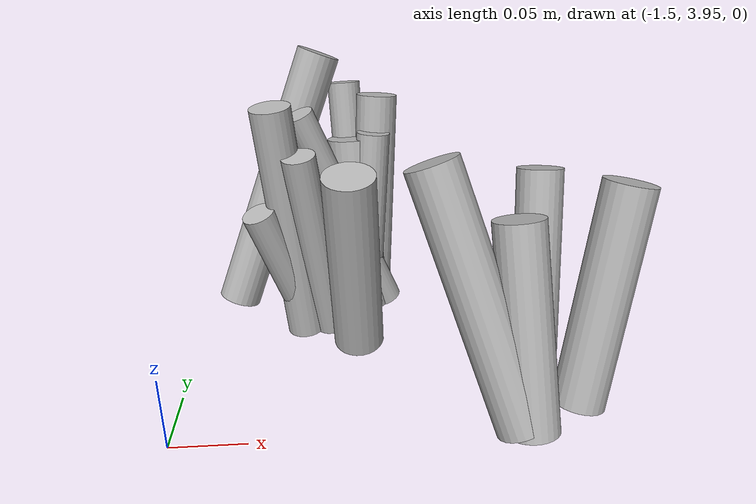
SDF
<sdf version="1.6">
 <world name="default">
  <model name="tussocks">
   <static>true</static>
   <link name="tuft48_0">
    <pose>-1.3808 4.1161 0.0602 0 0.2820 4.0723</pose>
    <visual name="tuft48_0_v">
     <geometry><cylinder><radius>0.0126</radius><length>0.1308</length></cylinder></geometry>
     <material>
      <script>
       <uri>model://bushfire/materials/scripts</uri>
       <uri>model://bushfire/materials/textures</uri>
       <name>Bushfire/Foliage2</name>
      </script>
     </material>
    </visual>
   </link>
   <link name="tuft48_1">
    <pose>-1.3813 4.0583 0.0687 0 0.1963 4.5888</pose>
    <visual name="tuft48_1_v">
     <geometry><cylinder><radius>0.0190</radius><length>0.1494</length></cylinder></geometry>
     <material>
      <script>
       <uri>model://bushfire/materials/scripts</uri>
       <uri>model://bushfire/materials/textures</uri>
       <name>Bushfire/Tussock</name>
      </script>
     </material>
    </visual>
   </link>
   <link name="tuft48_2">
    <pose>-1.3647 4.1488 0.0804 0 0.1511 1.2194</pose>
    <visual name="tuft48_2_v">
     <geometry><cylinder><radius>0.0160</radius><length>0.1748</length></cylinder></geometry>
     <material>
      <script>
       <uri>model://bushfire/materials/scripts</uri>
       <uri>model://bushfire/materials/textures</uri>
       <name>Bushfire/Tussock</name>
      </script>
     </material>
    </visual>
   </link>
   <link name="tuft48_3">
    <pose>-1.3878 4.1229 0.0820 0 0.3839 3.3956</pose>
    <visual name="tuft48_3_v">
     <geometry><cylinder><radius>0.0117</radius><length>0.1783</length></cylinder></geometry>
     <material>
      <script>
       <uri>model://bushfire/materials/scripts</uri>
       <uri>model://bushfire/materials/textures</uri>
       <name>Bushfire/Tussock</name>
      </script>
     </material>
    </visual>
   </link>
   <link name="tuft48_4">
    <pose>-1.4215 4.1810 0.0585 0 0.1193 2.3030</pose>
    <visual name="tuft48_4_v">
     <geometry><cylinder><radius>0.0129</radius><length>0.1271</length></cylinder></geometry>
     <material>
      <script>
       <uri>model://bushfire/materials/scripts</uri>
       <uri>model://bushfire/materials/textures</uri>
       <name>Bushfire/Foliage2</name>
      </script>
     </material>
    </visual>
   </link>
   <link name="tuft48_5">
    <pose>-1.4099 4.0872 0.0701 0 0.1707 3.9599</pose>
    <visual name="tuft48_5_v">
     <geometry><cylinder><radius>0.0126</radius><length>0.1523</length></cylinder></geometry>
     <material>
      <script>
       <uri>model://bushfire/materials/scripts</uri>
       <uri>model://bushfire/materials/textures</uri>
       <name>Bushfire/Foliage2</name>
      </script>
     </material>
    </visual>
   </link>
   <link name="tuft48_6">
    <pose>-1.3690 4.1329 0.0681 0 0.1299 1.0152</pose>
    <visual name="tuft48_6_v">
     <geometry><cylinder><radius>0.0130</radius><length>0.1480</length></cylinder></geometry>
     <material>
      <script>
       <uri>model://bushfire/materials/scripts</uri>
       <uri>model://bushfire/materials/textures</uri>
       <name>Bushfire/Tussock</name>
      </script>
     </material>
    </visual>
   </link>
   <link name="tuft48_7">
    <pose>-1.4095 4.1299 0.0641 0 0.2450 3.0589</pose>
    <visual name="tuft48_7_v">
     <geometry><cylinder><radius>0.0115</radius><length>0.1393</length></cylinder></geometry>
     <material>
      <script>
       <uri>model://bushfire/materials/scripts</uri>
       <uri>model://bushfire/materials/textures</uri>
       <name>Bushfire/Foliage2</name>
      </script>
     </material>
    </visual>
   </link>
   <link name="tuft48_8">
    <pose>-1.4341 4.0907 0.0498 0 0.3536 3.6740</pose>
    <visual name="tuft48_8_v">
     <geometry><cylinder><radius>0.0126</radius><length>0.1082</length></cylinder></geometry>
     <material>
      <script>
       <uri>model://bushfire/materials/scripts</uri>
       <uri>model://bushfire/materials/textures</uri>
       <name>Bushfire/Foliage2</name>
      </script>
     </material>
    </visual>
   </link>
   <link name="tuft48_9">
    <pose>-1.4292 4.0930 0.0855 0 0.1001 3.6822</pose>
    <visual name="tuft48_9_v">
     <geometry><cylinder><radius>0.0150</radius><length>0.1860</length></cylinder></geometry>
     <material>
      <script>
       <uri>model://bushfire/materials/scripts</uri>
       <uri>model://bushfire/materials/textures</uri>
       <name>Bushfire/Tussock</name>
      </script>
     </material>
    </visual>
   </link>
   <link name="tuft48_10">
    <pose>-1.3773 4.1401 0.0649 0 0.1611 1.8984</pose>
    <visual name="tuft48_10_v">
     <geometry><cylinder><radius>0.0195</radius><length>0.1411</length></cylinder></geometry>
     <material>
      <script>
       <uri>model://bushfire/materials/scripts</uri>
       <uri>model://bushfire/materials/textures</uri>
       <name>Bushfire/Foliage2</name>
      </script>
     </material>
    </visual>
   </link>
   <link name="tuft48_11">
    <pose>-1.3820 4.1592 0.0841 0 0.1816 1.8480</pose>
    <visual name="tuft48_11_v">
     <geometry><cylinder><radius>0.0128</radius><length>0.1829</length></cylinder></geometry>
     <material>
      <script>
       <uri>model://bushfire/materials/scripts</uri>
       <uri>model://bushfire/materials/textures</uri>
       <name>Bushfire/Foliage2</name>
      </script>
     </material>
    </visual>
   </link>
   <link name="tuft138_1">
    <pose>-1.4425 4.1533 0.0992 0 0.3836 0.3965</pose>
    <visual name="tuft138_1_v">
     <geometry><cylinder><radius>0.0168</radius><length>0.2156</length></cylinder></geometry>
     <material>
      <script>
       <uri>model://bushfire/materials/scripts</uri>
       <uri>model://bushfire/materials/textures</uri>
       <name>Bushfire/Tussock</name>
      </script>
     </material>
    </visual>
   </link>
   <link name="tuft185_3">
    <pose>-1.2612 4.0000 0.0749 0 0.2412 1.4766</pose>
    <visual name="tuft185_3_v">
     <geometry><cylinder><radius>0.0154</radius><length>0.1627</length></cylinder></geometry>
     <material>
      <script>
       <uri>model://bushfire/materials/scripts</uri>
       <uri>model://bushfire/materials/textures</uri>
       <name>Bushfire/Foliage2</name>
      </script>
     </material>
    </visual>
   </link>
   <link name="tuft185_4">
    <pose>-1.2732 3.9686 0.0650 0 0.2490 1.8995</pose>
    <visual name="tuft185_4_v">
     <geometry><cylinder><radius>0.0173</radius><length>0.1413</length></cylinder></geometry>
     <material>
      <script>
       <uri>model://bushfire/materials/scripts</uri>
       <uri>model://bushfire/materials/textures</uri>
       <name>Bushfire/Tussock</name>
      </script>
     </material>
    </visual>
   </link>
   <link name="tuft185_6">
    <pose>-1.2167 3.9942 0.0716 0 0.2483 0.7511</pose>
    <visual name="tuft185_6_v">
     <geometry><cylinder><radius>0.0185</radius><length>0.1557</length></cylinder></geometry>
     <material>
      <script>
       <uri>model://bushfire/materials/scripts</uri>
       <uri>model://bushfire/materials/textures</uri>
       <name>Bushfire/Tussock</name>
      </script>
     </material>
    </visual>
   </link>
   <link name="tuft185_7">
    <pose>-1.3034 3.9741 0.0839 0 0.3974 2.5316</pose>
    <visual name="tuft185_7_v">
     <geometry><cylinder><radius>0.0182</radius><length>0.1824</length></cylinder></geometry>
     <material>
      <script>
       <uri>model://bushfire/materials/scripts</uri>
       <uri>model://bushfire/materials/textures</uri>
       <name>Bushfire/Tussock</name>
      </script>
     </material>
    </visual>
   </link>
  </model>
 </world>
</sdf>
